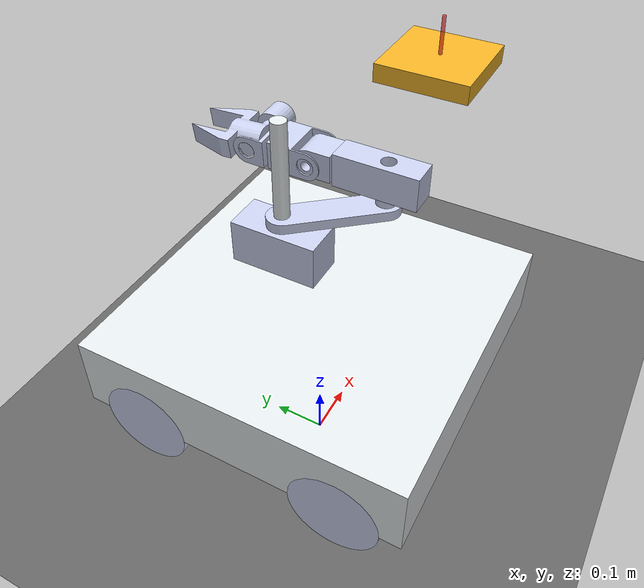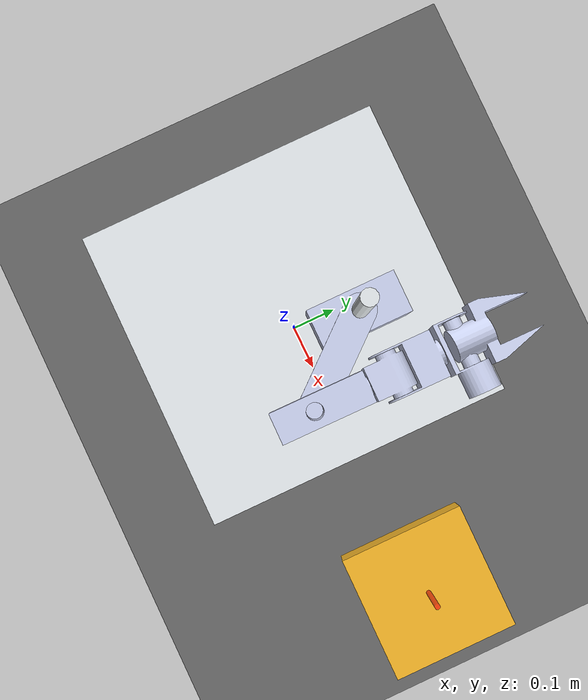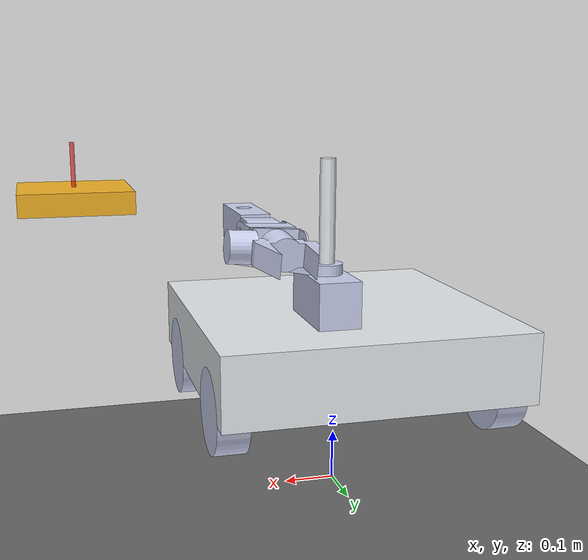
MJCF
<mujoco model="rm26_engineer_scene">

  <include file="rm26_engineer_description/rm26_arm.xml"/>

  <worldbody>
    <body name="exchange_station" pos="0.5 0 0.6" quat="1 0 0 0">
      <geom name="station_box" class="visualgeom" type="box" size="0.10 0.10 0.02"
            rgba="0.95 0.70 0.15 0.9"/>
      <site name="station_site" pos="0 0 0" size="0.008" rgba="1 0 0 1"/>
      <site name="station_axis" pos="0 0 0.05" size="0.004 0.05" type="cylinder"
            rgba="1 0 0 0.6"/>
    </body>
  </worldbody>

  <contact>
    <exclude body1="root" body2="link_1"/>
    <exclude body1="root" body2="link_2"/>
    <exclude body1="root" body2="link_3"/>
    <exclude body1="root" body2="link_4"/>
    <exclude body1="root" body2="link_5"/>
    <exclude body1="root" body2="link_6"/>
    <exclude body1="line_link" body2="link_2"/>
    <exclude body1="line_link" body2="link_3"/>
    <exclude body1="line_link" body2="link_4"/>
    <exclude body1="line_link" body2="link_5"/>
    <exclude body1="line_link" body2="link_6"/>
  </contact>

  <!-- 底盘固定: weld equality 比"每步硬写回 qpos[:7]"好 ——
       实测 root 漂移 5 µm, 且保留了臂对底盘的反作用力,
       硬写回会把关节稳态误差从 0.03° 抬到 0.45°. -->
  <equality>
    <weld name="chassis_pin" body1="root" solref="0.0002 1"/>
  </equality>

  <compiler angle="radian" eulerseq="zyx" autolimits="true"
            strippath="true" meshdir="rm26_engineer_description/meshes"/>

</mujoco>

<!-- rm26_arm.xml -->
<mujoco model="rm26_arm">
  <option iterations="50" timestep="0.001" solver="PGS" gravity="0 0 -9.81" />

  <compiler angle="radian" meshdir="meshes" eulerseq="zyx" autolimits="true" />

  <default>
    <joint limited="true" damping="0.01" armature="0.01" frictionloss="0.01" />
    <geom condim="4" contype="1" conaffinity="15" friction="0.9 0.2 0.2" solref="0.001 2" />
    <motor ctrllimited="true" />
    <equality solref="0.001 2" />
    <default class="visualgeom">
      <geom material="visualgeom" condim="1" contype="0" conaffinity="0" />
    </default>
  </default>

  <asset>
    <mesh name="base_link" content_type="model/obj" file="base_link.obj" />
    <mesh name="wheel_link_1" content_type="model/obj" file="wheel_link_1.obj" />
    <mesh name="wheel_link_2" content_type="model/obj" file="wheel_link_2.obj" />
    <mesh name="wheel_link_3" content_type="model/obj" file="wheel_link_3.obj" />
    <mesh name="wheel_link_4" content_type="model/obj" file="wheel_link_4.obj" />
    <mesh name="line_link" content_type="model/obj" file="line_link.obj" />
    <mesh name="link_1" content_type="model/obj" file="link_1.obj" />
    <mesh name="link_2" content_type="model/obj" file="link_2.obj" />
    <mesh name="link_3" content_type="model/obj" file="link_3.obj" />
    <mesh name="link_4" content_type="model/obj" file="link_4.obj" />
    <mesh name="link_5" content_type="model/obj" file="link_5.obj" />
    <mesh name="link_6" content_type="model/obj" file="link_6.obj" />
    <texture name="texplane" type="2d" builtin="checker" rgb1=".0 .0 .0" rgb2=".8 .8 .8" width="100" height="100" />
    <material name="matplane" reflectance="0." texture="texplane" texrepeat="1 1" texuniform="true" />
    <material name="visualgeom" rgba="0.5 0.9 0.2 1" />
  </asset>

  <worldbody>
    <light directional="true" diffuse="0.4 0.4 0.4" specular="0.1 0.1 0.1" pos="0 0 5.0" dir="0 0 -1" castshadow="false" />
    <light directional="true" diffuse="0.6 0.6 0.6" specular="0.2 0.2 0.2" pos="0 0 4" dir="0 0 -1" />
    <geom name="ground" type="plane" pos="0 0 0" size="100 100 0.001" quat="1 0 0 0" material="matplane" condim="3" conaffinity="15" />
    <camera name="fixed" pos="0 -3.0 0.6551064080886186" xyaxes="1 0 0 0 0 1" />
    <camera name="track" mode="trackcom" pos="0 -3.0 0.6551064080886186" xyaxes="1 0 0 0 0 1" />
    <body name="root" pos="0 0 0.15510640808861867" quat="1 0 0 0">
      <freejoint name="root" />
      <site name="imu" size="0.01" pos="0 0 0" />
      <geom type="mesh" rgba="0.898039 0.917647 0.929412 1" mesh="base_link" contype="1" conaffinity="0" density="0" group="1" class="visualgeom" />
      <geom type="mesh" rgba="0.898039 0.917647 0.929412 1" mesh="base_link" />
      <body name="wheel_link_1" pos="0.2935 -0.18 0.08" quat="0.5 -0.5 -0.5 0.5">
        <inertial pos="0 0 0.03" quat="0.5 0.5 -0.5 0.5" mass="1.20637" diaginertia="0.00386039 0.00229211 0.00229211" />
        <joint name="wheel_1" range="-10 10" axis="0 0 -1" />
        <geom type="mesh" rgba="0.792157 0.819608 0.933333 1" mesh="wheel_link_1" contype="1" conaffinity="0" density="0" group="1" class="visualgeom" />
        <geom type="mesh" rgba="0.792157 0.819608 0.933333 1" mesh="wheel_link_1" />
      </body>
      <body name="wheel_link_2" pos="0.2935 0.18 0.08" quat="0.5 -0.5 -0.5 0.5">
        <inertial pos="0 0 0.03" quat="0.5 0.5 -0.5 0.5" mass="1.20637" diaginertia="0.00386039 0.00229211 0.00229211" />
        <joint name="wheel_2" range="-10 10" axis="0 0 -1" />
        <geom type="mesh" rgba="0.792157 0.819608 0.933333 1" mesh="wheel_link_2" contype="1" conaffinity="0" density="0" group="1" class="visualgeom" />
        <geom type="mesh" rgba="0.792157 0.819608 0.933333 1" mesh="wheel_link_2" />
      </body>
      <body name="wheel_link_3" pos="-0.2935 -0.18 0.08" quat="0.5 -0.5 -0.5 0.5">
        <inertial pos="0 0 -0.03" quat="0.5 0.5 -0.5 0.5" mass="1.20637" diaginertia="0.00386039 0.00229211 0.00229211" />
        <joint name="wheel_3" range="-10 10" axis="0 0 -1" />
        <geom type="mesh" rgba="0.792157 0.819608 0.933333 1" mesh="wheel_link_3" contype="1" conaffinity="0" density="0" group="1" class="visualgeom" />
        <geom type="mesh" rgba="0.792157 0.819608 0.933333 1" mesh="wheel_link_3" />
      </body>
      <body name="wheel_link_4" pos="-0.2935 0.18 0.08" quat="0.5 -0.5 -0.5 0.5">
        <inertial pos="0 0 -0.03" quat="0.5 0.5 -0.5 0.5" mass="1.20637" diaginertia="0.00386039 0.00229211 0.00229211" />
        <joint name="wheel_4" range="-10 10" axis="0 0 -1" />
        <geom type="mesh" rgba="0.792157 0.819608 0.933333 1" mesh="wheel_link_4" contype="1" conaffinity="0" density="0" group="1" class="visualgeom" />
        <geom type="mesh" rgba="0.792157 0.819608 0.933333 1" mesh="wheel_link_4" />
      </body>
      <body name="line_link" pos="0.0525 0.106 0.216" quat="0 1 0 0">
        <inertial pos="0 0 -0.0435" quat="0.707107 0.707107 0 0" mass="1.0995" diaginertia="0.00353664 0.00346776 0.00131814" />
        <joint name="line" type="slide" range="0 0.38" axis="0 0 -1" />
        <geom type="mesh" rgba="0.792157 0.819608 0.933333 1" mesh="line_link" contype="1" conaffinity="0" density="0" group="1" class="visualgeom" />
        <geom type="mesh" rgba="0.792157 0.819608 0.933333 1" mesh="line_link" />
        <body name="link_1" pos="0 0 -0.107">
          <inertial pos="0.0699746 0.0829041 0.00818463" quat="0.651374 0.293149 -0.631041 0.302594" mass="0.298001" diaginertia="0.00151083 0.00144622 0.000102043" />
          <joint name="J1" range="-0.52 1.91" axis="0 0 -1" />
          <geom type="mesh" rgba="0.792157 0.819608 0.933333 1" mesh="link_1" contype="1" conaffinity="0" density="0" group="1" class="visualgeom" />
          <geom type="mesh" rgba="0.792157 0.819608 0.933333 1" mesh="link_1" />
          <body name="link_2" pos="0.1232 0.14596 -0.0545" quat="-3.67321e-06 1 0 0">
            <inertial pos="0.000101291 0.0152861 0" quat="0.707103 0.707103 -0.00234274 -0.00234274" mass="0.583987" diaginertia="0.00169494 0.00163913 0.000379396" />
            <joint name="J2" range="-0.52 2.61" axis="0 0 -1" />
            <geom type="mesh" rgba="0.792157 0.819608 0.933333 1" mesh="link_2" contype="1" conaffinity="0" density="0" group="1" class="visualgeom" />
            <geom type="mesh" rgba="0.792157 0.819608 0.933333 1" mesh="link_2" />
            <body name="link_3" pos="0.000655997 0.0989978 0" quat="0.707103 0.707103 -0.00234274 -0.00234274">
              <inertial pos="-0.000112221 -4.04046e-06 -0.0351944" quat="0.694231 0.0072643 0.00753055 0.719676" mass="0.222872" diaginertia="0.000168221 0.000148955 0.00013543" />
              <joint name="J3" range="-3.14 3.14" axis="0 0 -1" />
              <geom type="mesh" rgba="0.792157 0.819608 0.933333 1" mesh="link_3" contype="1" conaffinity="0" density="0" group="1" class="visualgeom" />
              <geom type="mesh" rgba="0.792157 0.819608 0.933333 1" mesh="link_3" />
              <body name="link_4" pos="-0.000499676 -1.79905e-05 -0.0465" quat="0.551449 -0.462165 0.535167 -0.44261">
                <inertial pos="0.00927688 0.0521485 0" quat="0.996128 0 0 -0.0879122" mass="0.263988" diaginertia="0.000252836 0.000228986 0.000164335" />
                <joint name="J4" range="0 1.57" axis="0 0 -1" />
                <geom type="mesh" rgba="0.792157 0.819608 0.933333 1" mesh="link_4" contype="1" conaffinity="0" density="0" group="1" class="visualgeom" />
                <geom type="mesh" rgba="0.792157 0.819608 0.933333 1" mesh="link_4" />
                <body name="link_5" pos="0.0145369 0.0817171 0" quat="0.550112 0.463798 -0.533752 0.444271">
                  <inertial pos="0.0461757 0.00291204 -0.0326248" quat="0.401782 0.554167 0.590216 0.427919" mass="0.168967" diaginertia="0.000285356 0.000285052 7.67121e-05" />
                  <joint name="J5" range="-1.39 4.36" axis="0 0 -1" />
                  <geom type="mesh" rgba="0.792157 0.819608 0.933333 1" mesh="link_5" contype="1" conaffinity="0" density="0" group="1" class="visualgeom" />
                  <geom type="mesh" rgba="0.792157 0.819608 0.933333 1" mesh="link_5" />
                  <body name="link_6" pos="-0.0429147 -0.00270639 -0.0405" quat="0.539375 -0.490288 0.509527 -0.457247">
                    <inertial pos="0.00646902 0.0373465 0.043" quat="0.704508 0.704508 -0.0605657 -0.0605647" mass="0.349896" diaginertia="0.000643882 0.000453558 0.000306376" />
                    <joint name="J6" range="-1.57 1.57" axis="0 0 -1" />
                    <geom type="mesh" rgba="0.792157 0.819608 0.933333 1" mesh="link_6" contype="1" conaffinity="0" density="0" group="1" class="visualgeom" />
                    <geom type="mesh" rgba="0.792157 0.819608 0.933333 1" mesh="link_6" />
                  </body>
                </body>
              </body>
            </body>
          </body>
        </body>
      </body>
    </body>
  </worldbody>

  <actuator>
    <motor name="wheel_1" joint="wheel_1" ctrllimited="true" ctrlrange="-1 1" gear="1" />
    <motor name="wheel_2" joint="wheel_2" ctrllimited="true" ctrlrange="-1 1" gear="1" />
    <motor name="wheel_3" joint="wheel_3" ctrllimited="true" ctrlrange="-1 1" gear="1" />
    <motor name="wheel_4" joint="wheel_4" ctrllimited="true" ctrlrange="-1 1" gear="1" />
    <motor name="line" joint="line" ctrllimited="true" ctrlrange="-1 1" gear="1" />
    <motor name="J1" joint="J1" ctrllimited="true" ctrlrange="-1 1" gear="1" />
    <motor name="J2" joint="J2" ctrllimited="true" ctrlrange="-1 1" gear="1" />
    <motor name="J3" joint="J3" ctrllimited="true" ctrlrange="-1 1" gear="1" />
    <motor name="J4" joint="J4" ctrllimited="true" ctrlrange="-1 1" gear="1" />
    <motor name="J5" joint="J5" ctrllimited="true" ctrlrange="-1 1" gear="1" />
    <motor name="J6" joint="J6" ctrllimited="true" ctrlrange="-1 1" gear="1" />
  </actuator>

  <sensor>
    <actuatorpos name="wheel_1_p" actuator="wheel_1" />
    <actuatorvel name="wheel_1_v" actuator="wheel_1" />
    <actuatorfrc name="wheel_1_f" actuator="wheel_1" noise="0.001" />
    <actuatorpos name="wheel_2_p" actuator="wheel_2" />
    <actuatorvel name="wheel_2_v" actuator="wheel_2" />
    <actuatorfrc name="wheel_2_f" actuator="wheel_2" noise="0.001" />
    <actuatorpos name="wheel_3_p" actuator="wheel_3" />
    <actuatorvel name="wheel_3_v" actuator="wheel_3" />
    <actuatorfrc name="wheel_3_f" actuator="wheel_3" noise="0.001" />
    <actuatorpos name="wheel_4_p" actuator="wheel_4" />
    <actuatorvel name="wheel_4_v" actuator="wheel_4" />
    <actuatorfrc name="wheel_4_f" actuator="wheel_4" noise="0.001" />
    <actuatorpos name="line_p" actuator="line" />
    <actuatorvel name="line_v" actuator="line" />
    <actuatorfrc name="line_f" actuator="line" noise="0.001" />
    <actuatorpos name="J1_p" actuator="J1" />
    <actuatorvel name="J1_v" actuator="J1" />
    <actuatorfrc name="J1_f" actuator="J1" noise="0.001" />
    <actuatorpos name="J2_p" actuator="J2" />
    <actuatorvel name="J2_v" actuator="J2" />
    <actuatorfrc name="J2_f" actuator="J2" noise="0.001" />
    <actuatorpos name="J3_p" actuator="J3" />
    <actuatorvel name="J3_v" actuator="J3" />
    <actuatorfrc name="J3_f" actuator="J3" noise="0.001" />
    <actuatorpos name="J4_p" actuator="J4" />
    <actuatorvel name="J4_v" actuator="J4" />
    <actuatorfrc name="J4_f" actuator="J4" noise="0.001" />
    <actuatorpos name="J5_p" actuator="J5" />
    <actuatorvel name="J5_v" actuator="J5" />
    <actuatorfrc name="J5_f" actuator="J5" noise="0.001" />
    <actuatorpos name="J6_p" actuator="J6" />
    <actuatorvel name="J6_v" actuator="J6" />
    <actuatorfrc name="J6_f" actuator="J6" noise="0.001" />
    <framequat name="orientation" objtype="site" noise="0.001" objname="imu" />
    <gyro name="angular-velocity" site="imu" noise="0.005" cutoff="34.9" />
  </sensor>
</mujoco>
